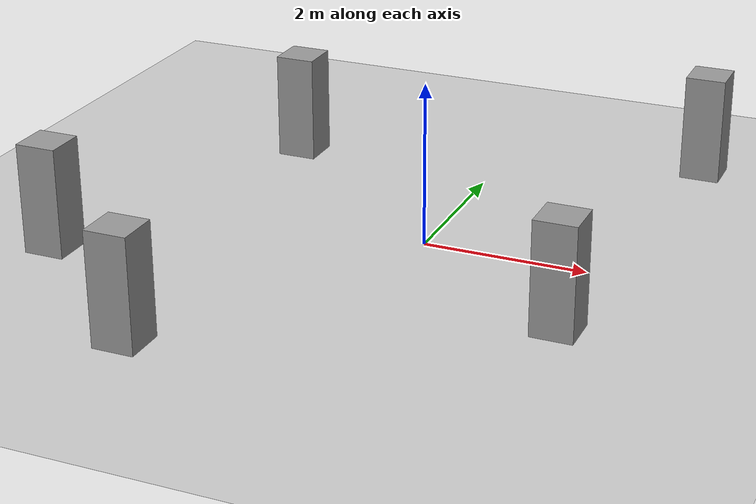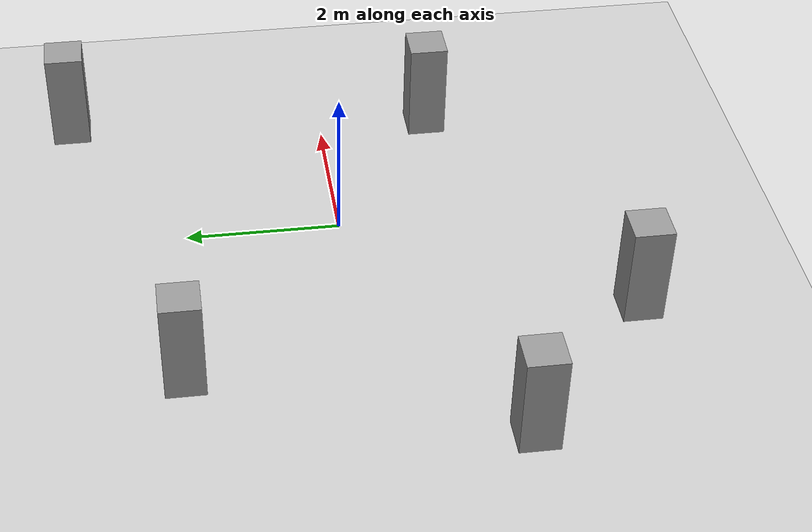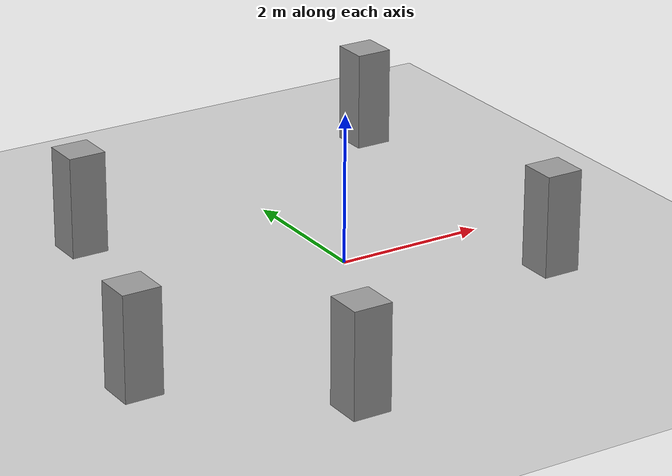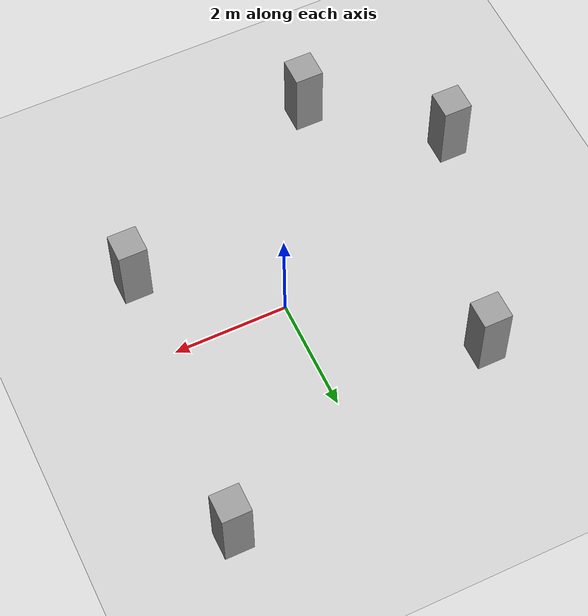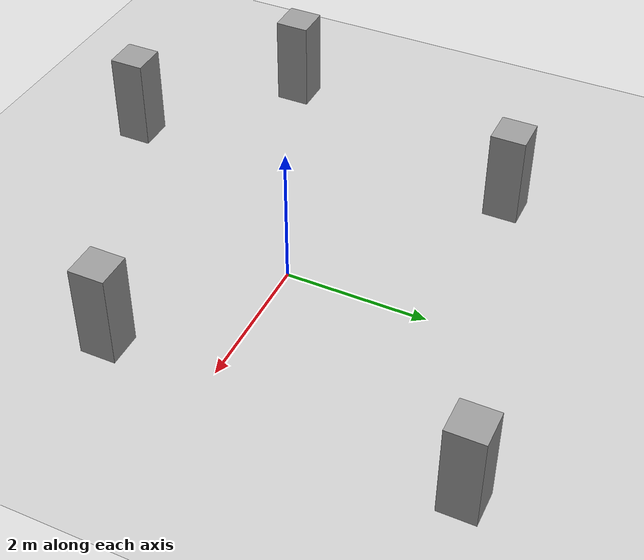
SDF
<sdf version="1.6">
 <world name="default">
  <light name="sun" type="directional">
   <pose>0 0 10 0 -0 0</pose>
   <diffuse>0.8 0.8 0.8 1</diffuse>
   <specular>0.1 0.1 0.1 1</specular>
   <attenuation>
    <range>1000</range>
    <constant>0.9</constant>
    <linear>0.01</linear>
    <quadratic>0.001</quadratic>
   </attenuation>
   <direction>-0.5 0.5 -1</direction>
  </light>
  <model name="ground_plane">
   <static>1</static>
   <link name="link">
    <collision name="collision">
     <geometry><plane><normal>0 0 1</normal><size>100 100</size></plane></geometry>
     <surface><friction><ode><mu>100</mu><mu2>50</mu2></ode></friction></surface>
    </collision>
    <visual name="visual">
     <cast_shadows>0</cast_shadows>
     <geometry><plane><normal>0 0 1</normal><size>100 100</size></plane></geometry>
     <material>
      <script><uri>file://media/materials/scripts/gazebo.material</uri><name>Gazebo/Grey</name></script>
     </material>
    </visual>
   </link>
  </model>
  <gravity>0 0 -9.8</gravity>
  <magnetic_field>6e-06 2.3e-05 -4.2e-05</magnetic_field>
  <atmosphere type="adiabatic"/>
  <physics name="default_physics" default="0" type="ode">
   <max_step_size>0.001</max_step_size>
   <real_time_factor>1</real_time_factor>
   <real_time_update_rate>1000</real_time_update_rate>
  </physics>
  <scene><ambient>0.4 0.4 0.4 1</ambient><background>0.7 0.7 0.7 1</background><shadows>1</shadows></scene>
  <spherical_coordinates>
   <surface_model>EARTH_WGS84</surface_model>
   <latitude_deg>0</latitude_deg>
   <longitude_deg>0</longitude_deg>
   <elevation>0</elevation>
   <heading_deg>0</heading_deg>
  </spherical_coordinates>
  <model name="obs">
   <link name="link">
    <pose>0.86041 -2.66137 0 0 -0 0</pose>
    <inertial>
     <mass>1</mass>
     <inertia>
      <ixx>0.166667</ixx>
      <ixy>0</ixy>
      <ixz>0</ixz>
      <iyy>0.166667</iyy>
      <iyz>0</iyz>
      <izz>0.166667</izz>
     </inertia>
    </inertial>
    <visual name="visual">
     <geometry><box><size>0.5 0.5 1.7</size></box></geometry>
     <material>
      <script><name>Gazebo/Grey</name><uri>file://media/materials/scripts/gazebo.material</uri></script>
      <ambient>0.3 0.3 0.3 1</ambient>
      <diffuse>0.7 0.7 0.7 1</diffuse>
      <specular>0.01 0.01 0.01 1</specular>
      <emissive>0 0 0 1</emissive>
      <shader type="vertex"><normal_map>__default__</normal_map></shader>
     </material>
    </visual>
    <collision name="collision">
     <geometry><box><size>0.5 0.5 1.7</size></box></geometry>
     <surface>
      <friction>
       <ode><mu>1</mu><mu2>1</mu2><fdir1>0 0 0</fdir1><slip1>0</slip1><slip2>0</slip2></ode>
       <torsional>
        <coefficient>1</coefficient>
        <patch_radius>0</patch_radius>
        <surface_radius>0</surface_radius>
        <use_patch_radius>1</use_patch_radius>
        <ode><slip>0</slip></ode>
       </torsional>
      </friction>
      <bounce><restitution_coefficient>0</restitution_coefficient><threshold>1e+06</threshold></bounce>
      <contact>
       <collide_without_contact>0</collide_without_contact>
       <collide_without_contact_bitmask>1</collide_without_contact_bitmask>
       <collide_bitmask>1</collide_bitmask>
       <ode>
        <soft_cfm>0</soft_cfm>
        <soft_erp>0.2</soft_erp>
        <kp>1e+13</kp>
        <kd>1</kd>
        <max_vel>0.01</max_vel>
        <min_depth>0</min_depth>
       </ode>
       <bullet>
        <split_impulse>1</split_impulse>
        <split_impulse_penetration_threshold>-0.01</split_impulse_penetration_threshold>
        <soft_cfm>0</soft_cfm>
        <soft_erp>0.2</soft_erp>
        <kp>1e+13</kp>
        <kd>1</kd>
       </bullet>
      </contact>
     </surface>
    </collision>
   </link>
   <link name="link_clone">
    <pose>1.47361 -8.32979 -0 0 -0 0</pose>
    <inertial>
     <mass>1</mass>
     <inertia>
      <ixx>0.166667</ixx>
      <ixy>0</ixy>
      <ixz>0</ixz>
      <iyy>0.166667</iyy>
      <iyz>0</iyz>
      <izz>0.166667</izz>
     </inertia>
    </inertial>
    <visual name="visual">
     <geometry><box><size>0.5 0.5 1.7</size></box></geometry>
     <material>
      <script><name>Gazebo/Grey</name><uri>file://media/materials/scripts/gazebo.material</uri></script>
      <ambient>0.3 0.3 0.3 1</ambient>
      <diffuse>0.7 0.7 0.7 1</diffuse>
      <specular>0.01 0.01 0.01 1</specular>
      <emissive>0 0 0 1</emissive>
      <shader type="vertex"><normal_map>__default__</normal_map></shader>
     </material>
    </visual>
    <collision name="collision">
     <geometry><box><size>0.5 0.5 1.7</size></box></geometry>
     <surface>
      <friction>
       <ode><mu>1</mu><mu2>1</mu2><fdir1>0 0 0</fdir1><slip1>0</slip1><slip2>0</slip2></ode>
       <torsional>
        <coefficient>1</coefficient>
        <patch_radius>0</patch_radius>
        <surface_radius>0</surface_radius>
        <use_patch_radius>1</use_patch_radius>
        <ode><slip>0</slip></ode>
       </torsional>
      </friction>
      <bounce><restitution_coefficient>0</restitution_coefficient><threshold>1e+06</threshold></bounce>
      <contact>
       <collide_without_contact>0</collide_without_contact>
       <collide_without_contact_bitmask>1</collide_without_contact_bitmask>
       <collide_bitmask>1</collide_bitmask>
       <ode>
        <soft_cfm>0</soft_cfm>
        <soft_erp>0.2</soft_erp>
        <kp>1e+13</kp>
        <kd>1</kd>
        <max_vel>0.01</max_vel>
        <min_depth>0</min_depth>
       </ode>
       <bullet>
        <split_impulse>1</split_impulse>
        <split_impulse_penetration_threshold>-0.01</split_impulse_penetration_threshold>
        <soft_cfm>0</soft_cfm>
        <soft_erp>0.2</soft_erp>
        <kp>1e+13</kp>
        <kd>1</kd>
       </bullet>
      </contact>
     </surface>
    </collision>
   </link>
   <link name="link_clone_0">
    <pose>5.6056 -6.30486 -0 0 -0 0</pose>
    <inertial>
     <mass>1</mass>
     <inertia>
      <ixx>0.166667</ixx>
      <ixy>0</ixy>
      <ixz>0</ixz>
      <iyy>0.166667</iyy>
      <iyz>0</iyz>
      <izz>0.166667</izz>
     </inertia>
    </inertial>
    <visual name="visual">
     <geometry><box><size>0.5 0.5 1.7</size></box></geometry>
     <material>
      <script><name>Gazebo/Grey</name><uri>file://media/materials/scripts/gazebo.material</uri></script>
      <ambient>0.3 0.3 0.3 1</ambient>
      <diffuse>0.7 0.7 0.7 1</diffuse>
      <specular>0.01 0.01 0.01 1</specular>
      <emissive>0 0 0 1</emissive>
      <shader type="vertex"><normal_map>__default__</normal_map></shader>
     </material>
    </visual>
    <collision name="collision">
     <geometry><box><size>0.5 0.5 1.7</size></box></geometry>
     <surface>
      <friction>
       <ode><mu>1</mu><mu2>1</mu2><fdir1>0 0 0</fdir1><slip1>0</slip1><slip2>0</slip2></ode>
       <torsional>
        <coefficient>1</coefficient>
        <patch_radius>0</patch_radius>
        <surface_radius>0</surface_radius>
        <use_patch_radius>1</use_patch_radius>
        <ode><slip>0</slip></ode>
       </torsional>
      </friction>
      <bounce><restitution_coefficient>0</restitution_coefficient><threshold>1e+06</threshold></bounce>
      <contact>
       <collide_without_contact>0</collide_without_contact>
       <collide_without_contact_bitmask>1</collide_without_contact_bitmask>
       <collide_bitmask>1</collide_bitmask>
       <ode>
        <soft_cfm>0</soft_cfm>
        <soft_erp>0.2</soft_erp>
        <kp>1e+13</kp>
        <kd>1</kd>
        <max_vel>0.01</max_vel>
        <min_depth>0</min_depth>
       </ode>
       <bullet>
        <split_impulse>1</split_impulse>
        <split_impulse_penetration_threshold>-0.01</split_impulse_penetration_threshold>
        <soft_cfm>0</soft_cfm>
        <soft_erp>0.2</soft_erp>
        <kp>1e+13</kp>
        <kd>1</kd>
       </bullet>
      </contact>
     </surface>
    </collision>
   </link>
   <link name="link_clone_1">
    <pose>-0.507061 -6.6025 -0 0 -0 0</pose>
    <inertial>
     <mass>1</mass>
     <inertia>
      <ixx>0.166667</ixx>
      <ixy>0</ixy>
      <ixz>0</ixz>
      <iyy>0.166667</iyy>
      <iyz>0</iyz>
      <izz>0.166667</izz>
     </inertia>
    </inertial>
    <visual name="visual">
     <geometry><box><size>0.5 0.5 1.7</size></box></geometry>
     <material>
      <script><name>Gazebo/Grey</name><uri>file://media/materials/scripts/gazebo.material</uri></script>
      <ambient>0.3 0.3 0.3 1</ambient>
      <diffuse>0.7 0.7 0.7 1</diffuse>
      <specular>0.01 0.01 0.01 1</specular>
      <emissive>0 0 0 1</emissive>
      <shader type="vertex"><normal_map>__default__</normal_map></shader>
     </material>
    </visual>
    <collision name="collision">
     <geometry><box><size>0.5 0.5 1.7</size></box></geometry>
     <surface>
      <friction>
       <ode><mu>1</mu><mu2>1</mu2><fdir1>0 0 0</fdir1><slip1>0</slip1><slip2>0</slip2></ode>
       <torsional>
        <coefficient>1</coefficient>
        <patch_radius>0</patch_radius>
        <surface_radius>0</surface_radius>
        <use_patch_radius>1</use_patch_radius>
        <ode><slip>0</slip></ode>
       </torsional>
      </friction>
      <bounce><restitution_coefficient>0</restitution_coefficient><threshold>1e+06</threshold></bounce>
      <contact>
       <collide_without_contact>0</collide_without_contact>
       <collide_without_contact_bitmask>1</collide_without_contact_bitmask>
       <collide_bitmask>1</collide_bitmask>
       <ode>
        <soft_cfm>0</soft_cfm>
        <soft_erp>0.2</soft_erp>
        <kp>1e+13</kp>
        <kd>1</kd>
        <max_vel>0.01</max_vel>
        <min_depth>0</min_depth>
       </ode>
       <bullet>
        <split_impulse>1</split_impulse>
        <split_impulse_penetration_threshold>-0.01</split_impulse_penetration_threshold>
        <soft_cfm>0</soft_cfm>
        <soft_erp>0.2</soft_erp>
        <kp>1e+13</kp>
        <kd>1</kd>
       </bullet>
      </contact>
     </surface>
    </collision>
   </link>
   <link name="link_clone_2">
    <pose>5.98324 -1.37834 -0 0 -0 0</pose>
    <inertial>
     <mass>1</mass>
     <inertia>
      <ixx>0.166667</ixx>
      <ixy>0</ixy>
      <ixz>0</ixz>
      <iyy>0.166667</iyy>
      <iyz>0</iyz>
      <izz>0.166667</izz>
     </inertia>
    </inertial>
    <visual name="visual">
     <geometry><box><size>0.5 0.5 1.7</size></box></geometry>
     <material>
      <script><name>Gazebo/Grey</name><uri>file://media/materials/scripts/gazebo.material</uri></script>
      <ambient>0.3 0.3 0.3 1</ambient>
      <diffuse>0.7 0.7 0.7 1</diffuse>
      <specular>0.01 0.01 0.01 1</specular>
      <emissive>0 0 0 1</emissive>
      <shader type="vertex"><normal_map>__default__</normal_map></shader>
     </material>
    </visual>
    <collision name="collision">
     <geometry><box><size>0.5 0.5 1.7</size></box></geometry>
     <surface>
      <friction>
       <ode><mu>1</mu><mu2>1</mu2><fdir1>0 0 0</fdir1><slip1>0</slip1><slip2>0</slip2></ode>
       <torsional>
        <coefficient>1</coefficient>
        <patch_radius>0</patch_radius>
        <surface_radius>0</surface_radius>
        <use_patch_radius>1</use_patch_radius>
        <ode><slip>0</slip></ode>
       </torsional>
      </friction>
      <bounce><restitution_coefficient>0</restitution_coefficient><threshold>1e+06</threshold></bounce>
      <contact>
       <collide_without_contact>0</collide_without_contact>
       <collide_without_contact_bitmask>1</collide_without_contact_bitmask>
       <collide_bitmask>1</collide_bitmask>
       <ode>
        <soft_cfm>0</soft_cfm>
        <soft_erp>0.2</soft_erp>
        <kp>1e+13</kp>
        <kd>1</kd>
        <max_vel>0.01</max_vel>
        <min_depth>0</min_depth>
       </ode>
       <bullet>
        <split_impulse>1</split_impulse>
        <split_impulse_penetration_threshold>-0.01</split_impulse_penetration_threshold>
        <soft_cfm>0</soft_cfm>
        <soft_erp>0.2</soft_erp>
        <kp>1e+13</kp>
        <kd>1</kd>
       </bullet>
      </contact>
     </surface>
    </collision>
   </link>
   <static>1</static>
   <pose>-3.47361 4.83099 0.5 0 -0 0</pose>
  </model>
 </world>
</sdf>
